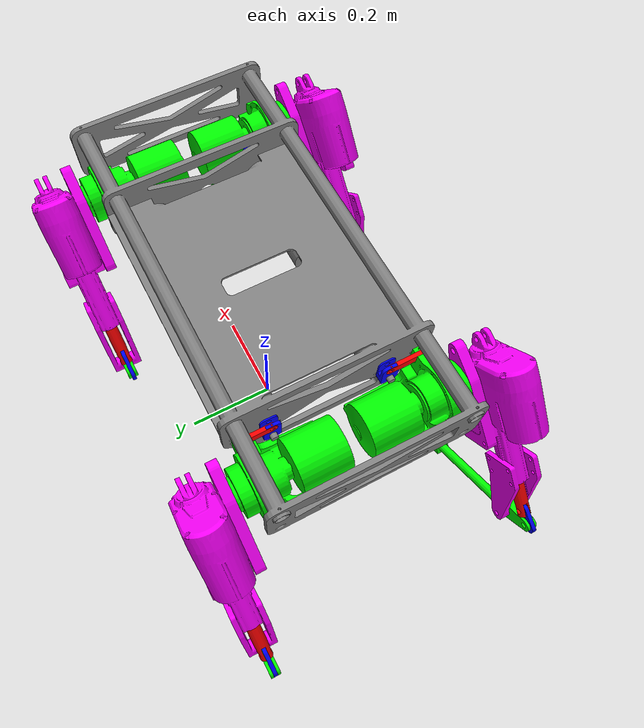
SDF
<sdf version="1.5">
 <model name="popiv10">
  <pose>0 0 0.55 0 0 0</pose>
  <plugin name="clock" filename="libgz_clock.so"><topic>/gazebo/frc/time</topic></plugin>
  <link name="Bati">
   <pose>-1.23401267283955E-16 -9.48763512283674E-17 -8.67361737988425E-19 0 0 0</pose>
   <must_be_base_link>1</must_be_base_link>
   <velocity_decay><linear>0</linear><angular>0</angular></velocity_decay>
   <inertial>
    <mass>20</mass>
    <pose>9.09532074717387E-06 -0.000497553877309163 -0.0275069463969434 0 0 0</pose>
    <inertia>
     <ixx>0.247668537907728</ixx>
     <ixy>9.52719505934244E-09</ixy>
     <ixz>9.14606177069775E-06</ixz>
     <iyy>0.721725932996695</iyy>
     <iyz>1.25675089666419E-05</iyz>
     <izz>0.909808046486756</izz>
    </inertia>
   </inertial>
   <collision name="Bati_collision">
    <geometry><mesh><scale>1 1 1</scale><uri>model://popiv10/meshes/Bati_col.STL</uri></mesh></geometry>
    <surface><friction><ode><mu>0</mu><mu2>0</mu2></ode></friction></surface>
   </collision>
   <visual name="Bati_visual">
    <material>
     <ambient>0.501960784313725 0.501960784313725 0.501960784313725 1</ambient>
     <diffuse>0.501960784313725 0.501960784313725 0.501960784313725 1</diffuse>
    </material>
    <geometry><mesh><scale>1 1 1</scale><uri>model://popiv10/meshes/Bati.STL</uri></mesh></geometry>
   </visual>
  </link>
  <link name="AileAvG">
   <pose>0.263425754201004 0.114444721397644 -0.0432315685423388 0 0 -8.0520144301051E-16</pose>
   <velocity_decay><linear>0</linear><angular>0</angular></velocity_decay>
   <inertial>
    <mass>0.0646786387611762</mass>
    <inertia>
     <ixx>2.25767017294111E-05</ixx>
     <ixy>1.29438836587314E-10</ixy>
     <ixz>1.39844874559254E-07</ixz>
     <iyy>1.8492229405514E-05</iyy>
     <iyz>8.35522267007479E-09</iyz>
     <izz>9.46527628055262E-06</izz>
    </inertia>
   </inertial>
   <collision name="AileAvG_collision">
    <pose>-0.263425754201004 -0.114444721397644 0.0432315685423388 0 0 0</pose>
    <geometry><mesh><scale>1 1 1</scale><uri>model://popiv10/meshes/AileAvG_col.STL</uri></mesh></geometry>
    <surface><friction><ode><mu>0</mu><mu2>0</mu2></ode></friction></surface>
   </collision>
   <visual name="AileAvG_visual">
    <pose>-0.263425754201004 -0.114444721397644 0.0432315685423388 0 0 0</pose>
    <material><ambient>0 0 1 1</ambient><diffuse>0 0 1 1</diffuse></material>
    <geometry><mesh><scale>1 1 1</scale><uri>model://popiv10/meshes/AileAvG.STL</uri></mesh></geometry>
   </visual>
  </link>
  <joint name="Bati-AileAvG" type="revolute">
   <parent>Bati</parent>
   <child>AileAvG</child>
   <pose>7.42457990038914E-05 -6.26432165022617E-06 -0.00676795740041729 0 6.28318530717959 4.72089941321358</pose>
   <axis>
    <xyz>0.00851033009774649 0.999963786485104 2.17326029417106E-17</xyz>
    <dynamics><damping>0</damping><friction>0</friction></dynamics>
    <limit><upper>0.383523383846024</upper><lower>-0.383523383846026</lower><effort>-1</effort></limit>
   </axis>
  </joint>
  <link name="EpauleAvG">
   <pose>-1.23401267283955E-16 -9.48763512283674E-17 -8.67361737988425E-19 0 0 0</pose>
   <velocity_decay><linear>0</linear><angular>0</angular></velocity_decay>
   <inertial>
    <mass>6.5</mass>
    <pose>0.330160459717672 0.113505740104002 -0.0631160868327549 0 0 0</pose>
    <inertia>
     <ixx>0.00781693</ixx>
     <ixy>3.684E-05</ixy>
     <ixz>1.995E-05</ixz>
     <iyy>0.00375687</iyy>
     <iyz>0.00015667</iyz>
     <izz>0.00774045</izz>
    </inertia>
   </inertial>
   <collision name="EpauleAvG_collision">
    <geometry><mesh><scale>1 1 1</scale><uri>model://popiv10/meshes/EpauleAvG_col.STL</uri></mesh></geometry>
    <surface><friction><ode><mu>0</mu><mu2>0</mu2></ode></friction></surface>
   </collision>
   <visual name="EpauleAvG_visual">
    <material><ambient>0 1 0 1</ambient><diffuse>0 1 0 1</diffuse></material>
    <geometry><mesh><scale>1 1 1</scale><uri>model://popiv10/meshes/EpauleAvG.STL</uri></mesh></geometry>
   </visual>
  </link>
  <joint name="Bati-EpauleAvG" type="revolute">
   <parent>Bati</parent>
   <child>EpauleAvG</child>
   <pose>0.330499999999994 0.174462531062964 -0.050999999880791 0 0 3.14159265358979</pose>
   <axis>
    <xyz>-1 -1.22460635382238E-16 0</xyz>
    <dynamics><damping>0</damping><friction>0</friction></dynamics>
    <limit><effort>-1</effort></limit>
   </axis>
  </joint>
  <joint name="BieletteAileAvG-EpauleAvG" type="revolute">
   <parent>BieletteAileAvG</parent>
   <child>EpauleAvG</child>
   <pose>0.263499999999995 0.174462531062966 -0.0239999998807918 0 2.16840434497101E-15 3.14159265358979</pose>
   <axis>
    <xyz>-1 -1.22460635382238E-16 -4.33680868994201E-15</xyz>
    <dynamics><damping>0</damping><friction>0</friction></dynamics>
    <limit><effort>-1</effort></limit>
   </axis>
  </joint>
  <link name="HJambeAvG">
   <pose>-1.23401267283955E-16 -9.48763512283674E-17 -8.67361737988425E-19 0 0 0</pose>
   <velocity_decay><linear>0</linear><angular>0</angular></velocity_decay>
   <inertial>
    <mass>4.1</mass>
    <pose>0.245410748798941 0.277164493537131 -0.115188374157169 0 0 0</pose>
    <inertia>
     <ixx>0.0220357818968176</ixx>
     <ixy>0.000712337452440022</ixy>
     <ixz>0.0111390372482744</ixz>
     <iyy>0.0302085713461647</iyy>
     <iyz>0.000476765402940527</iyz>
     <izz>0.0113202097886378</izz>
    </inertia>
   </inertial>
   <collision name="HJambeAvG_collision">
    <geometry><mesh><scale>1 1 1</scale><uri>model://popiv10/meshes/HJambeAvG_col.STL</uri></mesh></geometry>
    <surface><friction><ode><mu>0</mu><mu2>0</mu2></ode></friction></surface>
   </collision>
   <visual name="HJambeAvG_visual">
    <material><ambient>1 0 1 1</ambient><diffuse>1 0 1 1</diffuse></material>
    <geometry><mesh><scale>1 1 1</scale><uri>model://popiv10/meshes/HJambeAvG.STL</uri></mesh></geometry>
   </visual>
  </link>
  <joint name="EpauleAvG-HJambeAvG" type="revolute">
   <parent>EpauleAvG</parent>
   <child>HJambeAvG</child>
   <pose>0.330500000002319 0.282244545292279 -0.0509999998820486 0 6.28318530717959 4.71238898038469</pose>
   <axis>
    <xyz>1 -1.87014163338584E-16 -3.95422248090819E-16</xyz>
    <dynamics><damping>0</damping><friction>0</friction></dynamics>
    <limit><upper>1</upper><lower>-1.5</lower><effort>-1</effort></limit>
   </axis>
  </joint>
  <link name="BJambeAvG">
   <pose>0.216447376348876 0.281994545292388 -0.417386841132585 0 0 -8.0520144301051E-16</pose>
   <velocity_decay><linear>0</linear><angular>0</angular></velocity_decay>
   <inertial>
    <mass>0.469736249389513</mass>
    <inertia>
     <ixx>0.00253610875647126</ixx>
     <ixy>7.37151137908166E-12</ixy>
     <ixz>0.00337121059012424</ixz>
     <iyy>0.00714961627655026</iyy>
     <iyz>7.23513978500038E-13</iyz>
     <izz>0.0046504334596967</izz>
    </inertia>
   </inertial>
   <collision name="BJambeAvG_collision">
    <pose>-0.216447376348876 -0.281994545292389 0.417386841132585 0 0 0</pose>
    <geometry><mesh><scale>1 1 1</scale><uri>model://popiv10/meshes/BJambeAvG_col.STL</uri></mesh></geometry>
    <surface><friction><ode><mu>0</mu><mu2>0</mu2></ode></friction></surface>
   </collision>
   <visual name="BJambeAvG_visual">
    <pose>-0.216447376348876 -0.281994545292389 0.417386841132585 0 0 0</pose>
    <material><ambient>0 1 0 1</ambient><diffuse>0 1 0 1</diffuse></material>
    <geometry><mesh><scale>1 1 1</scale><uri>model://popiv10/meshes/BJambeAvG.STL</uri></mesh></geometry>
   </visual>
  </link>
  <joint name="HJambeAvG-BJambeAvG" type="revolute">
   <parent>HJambeAvG</parent>
   <child>BJambeAvG</child>
   <pose>-0.0896042233885925 -1.09634523681734E-13 0.0763905558995271 0 0 4.71238898038469</pose>
   <axis>
    <xyz>1 2.22044604925031E-16 0</xyz>
    <dynamics><damping>0</damping><friction>0</friction></dynamics>
    <limit><effort>-1</effort></limit>
   </axis>
  </joint>
  <joint name="BieletteAvG-BJambeAvG" type="revolute">
   <parent>BieletteAvG</parent>
   <child>BJambeAvG</child>
   <pose>-0.143543143871407 -1.09745545984197E-13 0.112661658131862 0 0 4.71238898038469</pose>
   <axis>
    <xyz>1 2.22044604925031E-16 0</xyz>
    <dynamics><damping>0</damping><friction>0</friction></dynamics>
    <limit><effort>-1</effort></limit>
   </axis>
  </joint>
  <link name="TigeVerinAvG">
   <pose>0.176757322686291 0.282244545212022 -0.210137911755464 0 0 -8.0520144301051E-16</pose>
   <velocity_decay><linear>0</linear><angular>0</angular></velocity_decay>
   <inertial>
    <mass>0.819350645424425</mass>
    <inertia>
     <ixx>0.00140421484692396</ixx>
     <ixy>6.99481704008864E-12</ixy>
     <ixz>0.00128823449592725</ixz>
     <iyy>0.00264825158697256</iyy>
     <iyz>6.65368592118286E-12</iyz>
     <izz>0.00131684880190005</izz>
    </inertia>
   </inertial>
   <collision name="TigeVerinAvG_collision">
    <pose>-0.176757322686291 -0.282244545212022 0.210137911755464 0 0 0</pose>
    <geometry><mesh><scale>1 1 1</scale><uri>model://popiv10/meshes/TigeVerinAvG_col.STL</uri></mesh></geometry>
    <surface><friction><ode><mu>0</mu><mu2>0</mu2></ode></friction></surface>
   </collision>
   <visual name="TigeVerinAvG_visual">
    <pose>-0.176757322686291 -0.282244545212022 0.210137911755464 0 0 0</pose>
    <material><ambient>1 0 0 1</ambient><diffuse>1 0 0 1</diffuse></material>
    <geometry><mesh><scale>1 1 1</scale><uri>model://popiv10/meshes/TigeVerinAvG.STL</uri></mesh></geometry>
   </visual>
  </link>
  <joint name="HJambeAvG-TigeVerinAvG" type="prismatic">
   <parent>HJambeAvG</parent>
   <child>TigeVerinAvG</child>
   <pose>3.21900006650111E-10 8.02571342717329E-11 -3.11169645605958E-10 0 5.48083901776243 1.20020565550599E-15</pose>
   <axis>
    <xyz>1 2.8765475674835E-17 3.33066907387547E-16</xyz>
    <dynamics><damping>0</damping><friction>0</friction></dynamics>
    <limit><upper>0.0477695258948646</upper><lower>-0.104230474105135</lower><effort>-1</effort></limit>
   </axis>
  </joint>
  <link name="BieletteAvG">
   <pose>0.0896638423431795 0.281994545292381 -0.293811179283136 0 0 -8.0520144301051E-16</pose>
   <velocity_decay><linear>0</linear><angular>0</angular></velocity_decay>
   <inertial>
    <mass>0.0323957439627731</mass>
    <inertia>
     <ixx>4.72536618155967E-06</ixx>
     <ixy>1.41108078436688E-20</ixy>
     <ixz>3.66200752356185E-06</ixz>
     <iyy>1.23438596351373E-05</iyy>
     <iyz>6.75738668758352E-21</iyz>
     <izz>7.96404790009363E-06</izz>
    </inertia>
   </inertial>
   <collision name="BieletteAvG_collision">
    <pose>-0.0896638423431794 -0.281994545292381 0.293811179283136 0 0 0</pose>
    <geometry><mesh><scale>1 1 1</scale><uri>model://popiv10/meshes/BieletteAvG_col.STL</uri></mesh></geometry>
    <surface><friction><ode><mu>0</mu><mu2>0</mu2></ode></friction></surface>
   </collision>
   <visual name="BieletteAvG_visual">
    <pose>-0.0896638423431794 -0.281994545292381 0.293811179283136 0 0 0</pose>
    <material><ambient>0 0 1 1</ambient><diffuse>0 0 1 1</diffuse></material>
    <geometry><mesh><scale>1 1 1</scale><uri>model://popiv10/meshes/BieletteAvG.STL</uri></mesh></geometry>
   </visual>
  </link>
  <joint name="TigeVerinAvG-BieletteAvG" type="revolute">
   <parent>TigeVerinAvG</parent>
   <child>BieletteAvG</child>
   <pose>0.0167596098657077 -1.02362562870439E-13 0.0109140037177449 0 6.28318530717959 4.71238898038469</pose>
   <axis>
    <xyz>1 1.15388342592191E-15 -2.96485229448768E-17</xyz>
    <dynamics><damping>0</damping><friction>0</friction></dynamics>
    <limit><effort>-1</effort></limit>
   </axis>
  </joint>
  <link name="AileAvD">
   <pose>0.263425754201022 -0.115519659271709 -0.0432315685423388 0 0 -8.0520144301051E-16</pose>
   <velocity_decay><linear>0</linear><angular>0</angular></velocity_decay>
   <inertial>
    <mass>0.0646786387611766</mass>
    <inertia>
     <ixx>2.25767017294112E-05</ixx>
     <ixy>1.29438836609017E-10</ixy>
     <ixz>1.39844874559271E-07</ixz>
     <iyy>1.84922294055141E-05</iyy>
     <iyz>8.35522266994819E-09</iyz>
     <izz>9.4652762805527E-06</izz>
    </inertia>
   </inertial>
   <collision name="AileAvD_collision">
    <pose>-0.263425754201022 0.115519659271709 0.0432315685423388 0 0 0</pose>
    <geometry><mesh><scale>1 1 1</scale><uri>model://popiv10/meshes/AileAvD_col.STL</uri></mesh></geometry>
    <surface><friction><ode><mu>0</mu><mu2>0</mu2></ode></friction></surface>
   </collision>
   <visual name="AileAvD_visual">
    <pose>-0.263425754201022 0.115519659271709 0.0432315685423388 0 0 0</pose>
    <material><ambient>0 0 1 1</ambient><diffuse>0 0 1 1</diffuse></material>
    <geometry><mesh><scale>1 1 1</scale><uri>model://popiv10/meshes/AileAvD.STL</uri></mesh></geometry>
   </visual>
  </link>
  <joint name="Bati-AileAvD" type="revolute">
   <parent>Bati</parent>
   <child>AileAvD</child>
   <pose>7.4246443611814E-05 6.26437808091962E-06 -0.00676795668422939 0 6.28318530717958 3.14159265358979</pose>
   <axis>
    <xyz>1 2.15451954526929E-16 -4.00572262214392E-16</xyz>
    <dynamics><damping>0</damping><friction>0</friction></dynamics>
    <limit><upper>0.383523383846024</upper><lower>-0.383523383846025</lower><effort>-1</effort></limit>
   </axis>
  </joint>
  <link name="EpauleAvD">
   <pose>-1.23401267283955E-16 -9.48763512283674E-17 -8.67361737988425E-19 0 0 0</pose>
   <velocity_decay><linear>0</linear><angular>0</angular></velocity_decay>
   <inertial>
    <mass>6.5</mass>
    <pose>0.329651979210791 -0.119157625267659 -0.0620302195490913 0 0 0</pose>
    <inertia>
     <ixx>0.00851805</ixx>
     <ixy>9.2E-05</ixy>
     <ixz>5.21E-05</ixz>
     <iyy>0.0042674</iyy>
     <iyz>0.00027441</iyz>
     <izz>0.00855281</izz>
    </inertia>
   </inertial>
   <collision name="EpauleAvD_collision">
    <geometry><mesh><scale>1 1 1</scale><uri>model://popiv10/meshes/EpauleAvD_col.STL</uri></mesh></geometry>
    <surface><friction><ode><mu>0</mu><mu2>0</mu2></ode></friction></surface>
   </collision>
   <visual name="EpauleAvD_visual">
    <material><ambient>0 1 0 1</ambient><diffuse>0 1 0 1</diffuse></material>
    <geometry><mesh><scale>1 1 1</scale><uri>model://popiv10/meshes/EpauleAvD.STL</uri></mesh></geometry>
   </visual>
  </link>
  <joint name="Bati-EpauleAvD" type="revolute">
   <parent>Bati</parent>
   <child>EpauleAvD</child>
   <pose>0.330500000000001 -0.175537468937039 -0.050999999880792 0 0 3.14159265358979</pose>
   <axis>
    <xyz>1 1.22460635382238E-16 0</xyz>
    <dynamics><damping>0</damping><friction>0</friction></dynamics>
    <limit><effort>-1</effort></limit>
   </axis>
  </joint>
  <joint name="BieletteAileAvD-EpauleAvD" type="revolute">
   <parent>BieletteAileAvD</parent>
   <child>EpauleAvD</child>
   <pose>0.263499999984395 -0.17553746869356 -0.0240000001962606 0 6.28318530717959 3.14159265358979</pose>
   <axis>
    <xyz>1 1.22460635382238E-16 7.05008781044128E-17</xyz>
    <dynamics><damping>0</damping><friction>0</friction></dynamics>
    <limit><effort>-1</effort></limit>
   </axis>
  </joint>
  <link name="HJambeAvD">
   <pose>-1.23401267283955E-16 -9.48763512283674E-17 -8.67361737988425E-19 0 0 0</pose>
   <velocity_decay><linear>0</linear><angular>0</angular></velocity_decay>
   <inertial>
    <mass>4.1</mass>
    <pose>0.253396068518462 -0.272602217530575 -0.110970658809525 0 0 0</pose>
    <inertia>
     <ixx>0.02370185</ixx>
     <ixy>0.00150343</ixy>
     <ixz>0.01224045</ixz>
     <iyy>0.032955085283372</iyy>
     <iyz>0.00097724</iyz>
     <izz>0.01358912</izz>
    </inertia>
   </inertial>
   <collision name="HJambeAvD_collision">
    <geometry><mesh><scale>1 1 1</scale><uri>model://popiv10/meshes/HJambeAvD_col.STL</uri></mesh></geometry>
    <surface><friction><ode><mu>0</mu><mu2>0</mu2></ode></friction></surface>
   </collision>
   <visual name="HJambeAvD_visual">
    <material><ambient>1 0 1 1</ambient><diffuse>1 0 1 1</diffuse></material>
    <geometry><mesh><scale>1 1 1</scale><uri>model://popiv10/meshes/HJambeAvD.STL</uri></mesh></geometry>
   </visual>
  </link>
  <joint name="EpauleAvD-HJambeAvD" type="revolute">
   <parent>EpauleAvD</parent>
   <child>HJambeAvD</child>
   <pose>0.330500000000002 -0.28315545470771 -0.0509999998807942 0 1.197854970235E-16 4.71238898038469</pose>
   <axis>
    <xyz>1 2.22044604925031E-16 -2.46519032881566E-32</xyz>
    <dynamics><damping>0</damping><friction>0</friction></dynamics>
    <limit><upper>1</upper><lower>-1.5</lower><effort>-1</effort></limit>
   </axis>
  </joint>
  <link name="TigeVerinAvD">
   <pose>0.17649914990041 -0.283155454788444 -0.209911199630747 0 0 -8.0520144301051E-16</pose>
   <velocity_decay><linear>0</linear><angular>0</angular></velocity_decay>
   <inertial>
    <mass>0.819350645411138</mass>
    <inertia>
     <ixx>0.00140021885085488</ixx>
     <ixy>7.02243398024131E-12</ixy>
     <ixz>0.00128836379286627</ixz>
     <iyy>0.00264825158688577</iyy>
     <iyz>6.66056283179175E-12</iyz>
     <izz>0.00132084479788077</izz>
    </inertia>
   </inertial>
   <collision name="TigeVerinAvD_collision">
    <pose>-0.17649914990041 0.283155454788444 0.209911199630747 0 0 0</pose>
    <geometry><mesh><scale>1 1 1</scale><uri>model://popiv10/meshes/TigeVerinAvD_col.STL</uri></mesh></geometry>
    <surface><friction><ode><mu>0</mu><mu2>0</mu2></ode></friction></surface>
   </collision>
   <visual name="TigeVerinAvD_visual">
    <pose>-0.17649914990041 0.283155454788444 0.209911199630747 0 0 0</pose>
    <material><ambient>1 0 0 1</ambient><diffuse>1 0 0 1</diffuse></material>
    <geometry><mesh><scale>1 1 1</scale><uri>model://popiv10/meshes/TigeVerinAvD.STL</uri></mesh></geometry>
   </visual>
  </link>
  <joint name="HJambeAvD-TigeVerinAvD" type="prismatic">
   <parent>HJambeAvD</parent>
   <child>TigeVerinAvD</child>
   <pose>3.21619564314091E-10 8.07224287413533E-11 -3.11864811752827E-10 0 5.48238989700715 6.28318530717958</pose>
   <axis>
    <xyz>1 1.07364054814694E-16 -1.66533453693773E-16</xyz>
    <dynamics><damping>0</damping><friction>0</friction></dynamics>
    <limit><upper>0.0477861233637279</upper><lower>-0.104213876636272</lower><effort>-1</effort></limit>
   </axis>
  </joint>
  <link name="BieletteAvD">
   <pose>0.0892768695676518 -0.283405454707717 -0.29345062373754 0 0 -8.0520144301051E-16</pose>
   <velocity_decay><linear>0</linear><angular>0</angular></velocity_decay>
   <inertial>
    <mass>0.0323957439627731</mass>
    <inertia>
     <ixx>4.71459459126065E-06</ixx>
     <ixy>7.24180321541611E-21</ixy>
     <ixz>3.65722535850406E-06</ixz>
     <iyy>1.23438596351374E-05</iyy>
     <iyz>3.09638023000429E-21</iyz>
     <izz>7.9748194903927E-06</izz>
    </inertia>
   </inertial>
   <collision name="BieletteAvD_collision">
    <pose>-0.0892768695676521 0.283405454707717 0.29345062373754 0 0 0</pose>
    <geometry><mesh><scale>1 1 1</scale><uri>model://popiv10/meshes/BieletteAvD_col.STL</uri></mesh></geometry>
    <surface><friction><ode><mu>0</mu><mu2>0</mu2></ode></friction></surface>
   </collision>
   <visual name="BieletteAvD_visual">
    <pose>-0.0892768695676521 0.283405454707717 0.29345062373754 0 0 0</pose>
    <material><ambient>0 0 1 1</ambient><diffuse>0 0 1 1</diffuse></material>
    <geometry><mesh><scale>1 1 1</scale><uri>model://popiv10/meshes/BieletteAvD.STL</uri></mesh></geometry>
   </visual>
  </link>
  <joint name="TigeVerinAvD-BieletteAvD" type="revolute">
   <parent>TigeVerinAvD</parent>
   <child>BieletteAvD</child>
   <pose>0.0167756536522129 1.60982338570648E-14 0.0108893270931236 0 6.28318530717959 4.71238898038469</pose>
   <axis>
    <xyz>1 1.10410726205712E-15 -4.88095103277837E-16</xyz>
    <dynamics><damping>0</damping><friction>0</friction></dynamics>
    <limit><effort>-1</effort></limit>
   </axis>
  </joint>
  <link name="BJambeAvD">
   <pose>0.215899984472949 -0.283405454707723 -0.417185316449007 0 0 -8.0520144301051E-16</pose>
   <velocity_decay><linear>0</linear><angular>0</angular></velocity_decay>
   <inertial>
    <mass>0.469736249392124</mass>
    <inertia>
     <ixx>0.00254474555040036</ixx>
     <ixy>7.37239303461882E-12</ixy>
     <ixz>0.00337390682087246</ixz>
     <iyy>0.00714961627663037</iyy>
     <iyz>7.14103447451869E-13</iyz>
     <izz>0.00464179666584774</izz>
    </inertia>
   </inertial>
   <collision name="BJambeAvD_collision">
    <pose>-0.21589998447295 0.283405454707723 0.417185316449007 0 0 0</pose>
    <geometry><mesh><scale>1 1 1</scale><uri>model://popiv10/meshes/BJambeAvD_col.STL</uri></mesh></geometry>
    <surface><friction><ode><mu>0</mu><mu2>0</mu2></ode></friction></surface>
   </collision>
   <visual name="BJambeAvD_visual">
    <pose>-0.21589998447295 0.283405454707723 0.417185316449007 0 0 0</pose>
    <material><ambient>0 1 0 1</ambient><diffuse>0 1 0 1</diffuse></material>
    <geometry><mesh><scale>1 1 1</scale><uri>model://popiv10/meshes/BJambeAvD.STL</uri></mesh></geometry>
   </visual>
  </link>
  <joint name="BieletteAvD-BJambeAvD" type="revolute">
   <parent>BieletteAvD</parent>
   <child>BJambeAvD</child>
   <pose>-0.143398768557513 2.19269047363468E-14 0.112845365618351 0 6.28318530717958 4.71238898038469</pose>
   <axis>
    <xyz>1 -2.36657397882327E-15 -6.04756975549474E-16</xyz>
    <dynamics><damping>0</damping><friction>0</friction></dynamics>
    <limit><effort>-1</effort></limit>
   </axis>
  </joint>
  <joint name="HJambeAvD-BJambeAvD" type="revolute">
   <parent>HJambeAvD</parent>
   <child>BJambeAvD</child>
   <pose>-0.0895063356320149 2.27595720048157E-15 0.0765052270196603 0 0 4.71238898038469</pose>
   <axis>
    <xyz>1 -1.2264489552059E-15 0</xyz>
    <dynamics><damping>0</damping><friction>0</friction></dynamics>
    <limit><effort>-1</effort></limit>
   </axis>
  </joint>
  <link name="AileArG">
   <pose>-0.263425754200995 0.114444721397642 -0.0432315685423508 0 0 -8.0520144301051E-16</pose>
   <velocity_decay><linear>0</linear><angular>0</angular></velocity_decay>
   <inertial>
    <mass>0.0646786387611763</mass>
    <inertia>
     <ixx>2.25767017294111E-05</ixx>
     <ixy>1.29438836601784E-10</ixy>
     <ixz>1.39844874559266E-07</ixz>
     <iyy>1.8492229405514E-05</iyy>
     <iyz>8.35522267005522E-09</iyz>
     <izz>9.46527628055264E-06</izz>
    </inertia>
   </inertial>
   <collision name="AileArG_collision">
    <pose>0.263425754200995 -0.114444721397642 0.0432315685423508 0 0 0</pose>
    <geometry><mesh><scale>1 1 1</scale><uri>model://popiv10/meshes/AileArG_col.STL</uri></mesh></geometry>
    <surface><friction><ode><mu>0</mu><mu2>0</mu2></ode></friction></surface>
   </collision>
   <visual name="AileArG_visual">
    <pose>0.263425754200995 -0.114444721397642 0.0432315685423508 0 0 0</pose>
    <material><ambient>0 0 1 1</ambient><diffuse>0 0 1 1</diffuse></material>
    <geometry><mesh><scale>1 1 1</scale><uri>model://popiv10/meshes/AileArG.STL</uri></mesh></geometry>
   </visual>
  </link>
  <joint name="Bati-AileArG" type="revolute">
   <parent>Bati</parent>
   <child>AileArG</child>
   <pose>-7.42457990055567E-05 -6.26432164808899E-06 -0.00676795740041408 0 6.28318530717959 4.72089941321358</pose>
   <axis>
    <xyz>0.00851033009774649 0.999963786485104 2.17326029417106E-17</xyz>
    <dynamics><damping>0</damping><friction>0</friction></dynamics>
    <limit><upper>0.383523383846024</upper><lower>-0.383523383846026</lower><effort>-1</effort></limit>
   </axis>
  </joint>
  <link name="EpauleArG">
   <pose>-1.23401267283955E-16 -9.48763512283674E-17 -8.67361737988425E-19 0 0 0</pose>
   <velocity_decay><linear>0</linear><angular>0</angular></velocity_decay>
   <inertial>
    <mass>6.5</mass>
    <pose>-0.330160488561749 0.113505740028266 -0.0631160783512883 0 0 0</pose>
    <inertia>
     <ixx>0.00781693</ixx>
     <ixy>3.684E-05</ixy>
     <ixz>1.995E-05</ixz>
     <iyy>0.00375687</iyy>
     <iyz>0.00015667</iyz>
     <izz>0.00774044970464082</izz>
    </inertia>
   </inertial>
   <collision name="EpauleArG_collision">
    <geometry><mesh><scale>1 1 1</scale><uri>model://popiv10/meshes/EpauleArG_col.STL</uri></mesh></geometry>
    <surface><friction><ode><mu>0</mu><mu2>0</mu2></ode></friction></surface>
   </collision>
   <visual name="EpauleArG_visual">
    <material><ambient>0 1 0 1</ambient><diffuse>0 1 0 1</diffuse></material>
    <geometry><mesh><scale>1 1 1</scale><uri>model://popiv10/meshes/EpauleArG.STL</uri></mesh></geometry>
   </visual>
  </link>
  <joint name="Bati-EpauleArG" type="revolute">
   <parent>Bati</parent>
   <child>EpauleArG</child>
   <pose>-0.330500000000007 0.174462531062964 -0.0509999998807889 0 0 3.14159265358979</pose>
   <axis>
    <xyz>-1 -1.22460635382238E-16 0</xyz>
    <dynamics><damping>0</damping><friction>0</friction></dynamics>
    <limit><effort>-1</effort></limit>
   </axis>
  </joint>
  <joint name="BieletteAileArG-EpauleArG" type="revolute">
   <parent>BieletteAileArG</parent>
   <child>EpauleArG</child>
   <pose>-0.263500003637691 0.174462534898399 -0.0240000001215705 0 0 0</pose>
   <axis>
    <xyz>1 0 0</xyz>
    <dynamics><damping>0</damping><friction>0</friction></dynamics>
    <limit><effort>-1</effort></limit>
   </axis>
  </joint>
  <link name="HJambeArG">
   <pose>-1.23401267283955E-16 -9.48763512283674E-17 -8.67361737988425E-19 0 0 0</pose>
   <velocity_decay><linear>0</linear><angular>0</angular></velocity_decay>
   <inertial>
    <mass>4.1</mass>
    <pose>-0.41558925113957 0.277164493513262 -0.11518837417974 0 0 0</pose>
    <inertia>
     <ixx>0.0220357818731865</ixx>
     <ixy>0.000712337452382621</ixy>
     <ixz>0.0111390372464694</ixz>
     <iyy>0.0302085713135378</iyy>
     <iyz>0.00047676540853857</iyz>
     <izz>0.0113202097802231</izz>
    </inertia>
   </inertial>
   <collision name="HJambeArG_collision">
    <geometry><mesh><scale>1 1 1</scale><uri>model://popiv10/meshes/HJambeArG_col.STL</uri></mesh></geometry>
    <surface><friction><ode><mu>0</mu><mu2>0</mu2></ode></friction></surface>
   </collision>
   <visual name="HJambeArG_visual">
    <material><ambient>1 0 1 1</ambient><diffuse>1 0 1 1</diffuse></material>
    <geometry><mesh><scale>1 1 1</scale><uri>model://popiv10/meshes/HJambeArG.STL</uri></mesh></geometry>
   </visual>
  </link>
  <joint name="EpauleArG-HJambeArG" type="revolute">
   <parent>EpauleArG</parent>
   <child>HJambeArG</child>
   <pose>-0.330500000049006 0.282244545292279 -0.050999999912882 0 5.16374209661646E-16 4.71238898038469</pose>
   <axis>
    <xyz>1 2.88064888632223E-15 -9.86076131526265E-32</xyz>
    <dynamics><damping>0</damping><friction>0</friction></dynamics>
    <limit><upper>1</upper><lower>-1.5</lower><effort>-1</effort></limit>
   </axis>
  </joint>
  <link name="TigeVerinArG">
   <pose>-0.484242677313733 0.282244545211858 -0.210137911755469 0 0 -8.0520144301051E-16</pose>
   <velocity_decay><linear>0</linear><angular>0</angular></velocity_decay>
   <inertial>
    <mass>0.819350645424423</mass>
    <inertia>
     <ixx>0.00140421484692373</ixx>
     <ixy>6.99481620954319E-12</ixy>
     <ixz>0.00128823449592725</ixz>
     <iyy>0.00264825158697254</iyy>
     <iyz>6.65368506438056E-12</iyz>
     <izz>0.00131684880190026</izz>
    </inertia>
   </inertial>
   <collision name="TigeVerinArG_collision">
    <pose>0.484242677313733 -0.282244545211857 0.210137911755469 0 0 0</pose>
    <geometry><mesh><scale>1 1 1</scale><uri>model://popiv10/meshes/TigeVerinArG_col.STL</uri></mesh></geometry>
    <surface><friction><ode><mu>0</mu><mu2>0</mu2></ode></friction></surface>
   </collision>
   <visual name="TigeVerinArG_visual">
    <pose>0.484242677313733 -0.282244545211857 0.210137911755469 0 0 0</pose>
    <material><ambient>1 0 0 1</ambient><diffuse>1 0 0 1</diffuse></material>
    <geometry><mesh><scale>1 1 1</scale><uri>model://popiv10/meshes/TigeVerinArG.STL</uri></mesh></geometry>
   </visual>
  </link>
  <joint name="HJambeArG-TigeVerinArG" type="prismatic">
   <parent>HJambeArG</parent>
   <child>TigeVerinArG</child>
   <pose>3.21896564958735E-10 8.04164512757666E-11 -3.11166259425733E-10 0 5.48083901776252 1.60027420734146E-15</pose>
   <axis>
    <xyz>1 3.83539675662543E-17 0</xyz>
    <dynamics><damping>0</damping><friction>0</friction></dynamics>
    <limit><upper>0.0477695258948678</upper><lower>-0.104230474105132</lower><effort>-1</effort></limit>
   </axis>
  </joint>
  <link name="BieletteArG">
   <pose>-0.571336157656853 0.281994545292214 -0.293811179283134 0 0 -8.0520144301051E-16</pose>
   <velocity_decay><linear>0</linear><angular>0</angular></velocity_decay>
   <inertial>
    <mass>0.0323957439627735</mass>
    <inertia>
     <ixx>4.72536618155908E-06</ixx>
     <ixy>9.38296758738578E-21</ixy>
     <ixz>3.6620075235616E-06</ixz>
     <iyy>1.23438596351375E-05</iyy>
     <iyz>1.19128295963892E-20</iyz>
     <izz>7.96404790009437E-06</izz>
    </inertia>
   </inertial>
   <collision name="BieletteArG_collision">
    <pose>0.571336157656854 -0.281994545292213 0.293811179283134 0 0 0</pose>
    <geometry><mesh><scale>1 1 1</scale><uri>model://popiv10/meshes/BieletteArG_col.STL</uri></mesh></geometry>
    <surface><friction><ode><mu>0</mu><mu2>0</mu2></ode></friction></surface>
   </collision>
   <visual name="BieletteArG_visual">
    <pose>0.571336157656854 -0.281994545292213 0.293811179283134 0 0 0</pose>
    <material><ambient>0 0 1 1</ambient><diffuse>0 0 1 1</diffuse></material>
    <geometry><mesh><scale>1 1 1</scale><uri>model://popiv10/meshes/BieletteArG.STL</uri></mesh></geometry>
   </visual>
  </link>
  <joint name="TigeVerinArG-BieletteArG" type="revolute">
   <parent>TigeVerinArG</parent>
   <child>BieletteArG</child>
   <pose>0.0167596098657244 6.51145803942654E-14 0.0109140037176295 0 0 4.71238898038469</pose>
   <axis>
    <xyz>1 1.48016096849335E-15 0</xyz>
    <dynamics><damping>0</damping><friction>0</friction></dynamics>
    <limit><effort>-1</effort></limit>
   </axis>
  </joint>
  <link name="BJambeArG">
   <pose>-0.444552623651175 0.281994545292203 -0.417386841132587 0 0 -8.0520144301051E-16</pose>
   <velocity_decay><linear>0</linear><angular>0</angular></velocity_decay>
   <inertial>
    <mass>0.469736249389513</mass>
    <inertia>
     <ixx>0.00253610875647184</ixx>
     <ixy>7.37152976745088E-12</ixy>
     <ixz>0.00337121059012442</ixz>
     <iyy>0.00714961627655026</iyy>
     <iyz>7.23500662394798E-13</iyz>
     <izz>0.00465043345969612</izz>
    </inertia>
   </inertial>
   <collision name="BJambeArG_collision">
    <pose>0.444552623651175 -0.281994545292203 0.417386841132587 0 0 0</pose>
    <geometry><mesh><scale>1 1 1</scale><uri>model://popiv10/meshes/BJambeArG_col.STL</uri></mesh></geometry>
    <surface><friction><ode><mu>0</mu><mu2>0</mu2></ode></friction></surface>
   </collision>
   <visual name="BJambeArG_visual">
    <pose>0.444552623651175 -0.281994545292203 0.417386841132587 0 0 0</pose>
    <material><ambient>0 1 0 1</ambient><diffuse>0 1 0 1</diffuse></material>
    <geometry><mesh><scale>1 1 1</scale><uri>model://popiv10/meshes/BJambeArG.STL</uri></mesh></geometry>
   </visual>
  </link>
  <joint name="BieletteArG-BJambeArG" type="revolute">
   <parent>BieletteArG</parent>
   <child>BJambeArG</child>
   <pose>-0.143543143871374 7.54951656745106E-14 0.112661658131754 0 0 4.71238898038469</pose>
   <axis>
    <xyz>1 2.22044604925031E-16 0</xyz>
    <dynamics><damping>0</damping><friction>0</friction></dynamics>
    <limit><effort>-1</effort></limit>
   </axis>
  </joint>
  <joint name="HJambeArG-BJambeArG" type="revolute">
   <parent>HJambeArG</parent>
   <child>BJambeArG</child>
   <pose>-0.0896042233885624 7.55506768257419E-14 0.0763905558994144 0 0 4.71238898038469</pose>
   <axis>
    <xyz>1 1.21837218857817E-15 0</xyz>
    <dynamics><damping>0</damping><friction>0</friction></dynamics>
    <limit><effort>-1</effort></limit>
   </axis>
  </joint>
  <link name="BieletteAileArG">
   <pose>-0.263500004147109 0.144462580212292 -0.023949998224632 0 0 -8.0520144301051E-16</pose>
   <velocity_decay><linear>0</linear><angular>0</angular></velocity_decay>
   <inertial>
    <mass>0.0292053931664001</mass>
    <inertia>
     <ixx>1.35676527357592E-05</ixx>
     <ixy>2.02077411649163E-20</ixy>
     <ixz>7.59456158233352E-23</ixz>
     <iyy>1.16291526214607E-06</iyy>
     <iyz>1.92536666637304E-08</iyz>
     <izz>1.27162617074808E-05</izz>
    </inertia>
   </inertial>
   <collision name="BieletteAileArG_collision">
    <pose>0.263500004147109 -0.144462580212292 0.023949998224632 0 0 0</pose>
    <geometry>
     <mesh><scale>1 1 1</scale><uri>model://popiv10/meshes/BieletteAileArG_col.STL</uri></mesh>
    </geometry>
    <surface><friction><ode><mu>0</mu><mu2>0</mu2></ode></friction></surface>
   </collision>
   <visual name="BieletteAileArG_visual">
    <pose>0.263500004147109 -0.144462580212292 0.023949998224632 0 0 0</pose>
    <material><ambient>1 0 0 1</ambient><diffuse>1 0 0 1</diffuse></material>
    <geometry><mesh><scale>1 1 1</scale><uri>model://popiv10/meshes/BieletteAileArG.STL</uri></mesh></geometry>
   </visual>
  </link>
  <joint name="AileArG-BieletteAileArG" type="revolute">
   <parent>AileArG</parent>
   <child>BieletteAileArG</child>
   <pose>5.09417286131963E-10 -0.0299999619614808 5.00095150871641E-05 0 6.28318530717959 1.32581766366803</pose>
   <axis>
    <xyz>0.242535625036335 -0.970142500145332 3.03424117003625E-16</xyz>
    <dynamics><damping>0</damping><friction>0</friction></dynamics>
    <limit><effort>-1</effort></limit>
   </axis>
  </joint>
  <link name="BieletteAileAvD">
   <pose>0.26350000000005 -0.145537510613226 -0.0239499941747634 0 0 -8.0520144301051E-16</pose>
   <velocity_decay><linear>0</linear><angular>0</angular></velocity_decay>
   <inertial>
    <mass>0.0292053931664001</mass>
    <inertia>
     <ixx>1.35676527357591E-05</ixx>
     <ixy>1.86481535007197E-20</ixy>
     <ixz>7.80084053938387E-22</ixz>
     <iyy>1.16291526214607E-06</iyy>
     <iyz>1.9253666663721E-08</iyz>
     <izz>1.27162617074808E-05</izz>
    </inertia>
   </inertial>
   <collision name="BieletteAileAvD_collision">
    <pose>-0.26350000000005 0.145537510613226 0.0239499941747634 0 0 0</pose>
    <geometry>
     <mesh><scale>1 1 1</scale><uri>model://popiv10/meshes/BieletteAileAvD_col.STL</uri></mesh>
    </geometry>
    <surface><friction><ode><mu>0</mu><mu2>0</mu2></ode></friction></surface>
   </collision>
   <visual name="BieletteAileAvD_visual">
    <pose>-0.26350000000005 0.145537510613226 0.0239499941747634 0 0 0</pose>
    <material><ambient>1 0 0 1</ambient><diffuse>1 0 0 1</diffuse></material>
    <geometry><mesh><scale>1 1 1</scale><uri>model://popiv10/meshes/BieletteAileAvD.STL</uri></mesh></geometry>
   </visual>
  </link>
  <joint name="AileAvD-BieletteAileAvD" type="revolute">
   <parent>AileAvD</parent>
   <child>BieletteAileAvD</child>
   <pose>-1.56553658925418E-11 0.0299999585672533 5.00053905283515E-05 0 2.41239653012042E-29 3.14159265358979</pose>
   <axis>
    <xyz>1 9.27662086551456E-16 0</xyz>
    <dynamics><damping>0</damping><friction>0</friction></dynamics>
    <limit><effort>-1</effort></limit>
   </axis>
  </joint>
  <link name="BieletteAileAvG">
   <pose>0.263499999999992 0.144462572739172 -0.023949994174783 0 0 -8.0520144301051E-16</pose>
   <velocity_decay><linear>0</linear><angular>0</angular></velocity_decay>
   <inertial>
    <mass>0.0292053931664</mass>
    <inertia>
     <ixx>1.35676527357591E-05</ixx>
     <ixy>1.10538925080078E-20</ixy>
     <ixz>1.55969521614184E-21</ixz>
     <iyy>1.1629152900721E-06</iyy>
     <iyz>1.9262043482874E-08</iyz>
     <izz>1.27162616795548E-05</izz>
    </inertia>
   </inertial>
   <collision name="BieletteAileAvG_collision">
    <pose>-0.263499999999992 -0.144462572739172 0.023949994174783 0 0 0</pose>
    <geometry>
     <mesh><scale>1 1 1</scale><uri>model://popiv10/meshes/BieletteAileAvG_col.STL</uri></mesh>
    </geometry>
    <surface><friction><ode><mu>0</mu><mu2>0</mu2></ode></friction></surface>
   </collision>
   <visual name="BieletteAileAvG_visual">
    <pose>-0.263499999999992 -0.144462572739172 0.023949994174783 0 0 0</pose>
    <material><ambient>1 0 0 1</ambient><diffuse>1 0 0 1</diffuse></material>
    <geometry><mesh><scale>1 1 1</scale><uri>model://popiv10/meshes/BieletteAileAvG.STL</uri></mesh></geometry>
   </visual>
  </link>
  <joint name="AileAvG-BieletteAileAvG" type="revolute">
   <parent>AileAvG</parent>
   <child>BieletteAileAvG</child>
   <pose>3.1641356201817E-15 -0.0299999583237945 5.00057060174169E-05 0 2.31296463463574E-15 3.14159265358979</pose>
   <axis>
    <xyz>-1 -1.22460635382238E-16 -4.62592926927148E-15</xyz>
    <dynamics><damping>0</damping><friction>0</friction></dynamics>
    <limit><effort>-1</effort></limit>
   </axis>
  </joint>
  <link name="AileArD">
   <pose>-0.263425754200967 -0.115519659271723 -0.0432315685423512 0 0 -8.0520144301051E-16</pose>
   <velocity_decay><linear>0</linear><angular>0</angular></velocity_decay>
   <inertial>
    <mass>0.0646786387611762</mass>
    <inertia>
     <ixx>2.25767017294111E-05</ixx>
     <ixy>1.29438836585633E-10</ixy>
     <ixz>1.39844874559257E-07</ixz>
     <iyy>1.8492229405514E-05</iyy>
     <iyz>8.35522267008636E-09</iyz>
     <izz>9.46527628055261E-06</izz>
    </inertia>
   </inertial>
   <collision name="AileArD_collision">
    <pose>0.263425754200967 0.115519659271724 0.0432315685423512 0 0 0</pose>
    <geometry><mesh><scale>1 1 1</scale><uri>model://popiv10/meshes/AileArD_col.STL</uri></mesh></geometry>
    <surface><friction><ode><mu>0</mu><mu2>0</mu2></ode></friction></surface>
   </collision>
   <visual name="AileArD_visual">
    <pose>0.263425754200967 0.115519659271724 0.0432315685423512 0 0 0</pose>
    <material><ambient>0 0 1 1</ambient><diffuse>0 0 1 1</diffuse></material>
    <geometry><mesh><scale>1 1 1</scale><uri>model://popiv10/meshes/AileArD.STL</uri></mesh></geometry>
   </visual>
  </link>
  <joint name="Bati-AileArD" type="revolute">
   <parent>Bati</parent>
   <child>AileArD</child>
   <pose>-7.42457990197676E-05 6.26432165057311E-06 -0.00676795740041591 0 6.28318530717958 3.14159265358979</pose>
   <axis>
    <xyz>1 2.15451954526929E-16 -4.00572262214392E-16</xyz>
    <dynamics><damping>0</damping><friction>0</friction></dynamics>
    <limit><upper>0.383523383846025</upper><lower>-0.383523383846025</lower><effort>-1</effort></limit>
   </axis>
  </joint>
  <link name="BieletteAileArD">
   <pose>-0.263499999999979 -0.145537510613237 -0.0239499941747799 0 0 -8.0520144301051E-16</pose>
   <velocity_decay><linear>0</linear><angular>0</angular></velocity_decay>
   <inertial>
    <mass>0.0292053931664</mass>
    <inertia>
     <ixx>1.35676527357591E-05</ixx>
     <ixy>1.09474744912887E-20</ixy>
     <ixz>7.15178893111736E-23</ixz>
     <iyy>1.1629152900721E-06</iyy>
     <iyz>1.92620434827043E-08</iyz>
     <izz>1.27162616795547E-05</izz>
    </inertia>
   </inertial>
   <collision name="BieletteAileArD_collision">
    <pose>0.263499999999979 0.145537510613237 0.0239499941747799 0 0 0</pose>
    <geometry>
     <mesh><scale>1 1 1</scale><uri>model://popiv10/meshes/BieletteAileArD_col.STL</uri></mesh>
    </geometry>
    <surface><friction><ode><mu>0</mu><mu2>0</mu2></ode></friction></surface>
   </collision>
   <visual name="BieletteAileArD_visual">
    <pose>0.263499999999979 0.145537510613237 0.0239499941747799 0 0 0</pose>
    <material><ambient>1 0 0 1</ambient><diffuse>1 0 0 1</diffuse></material>
    <geometry><mesh><scale>1 1 1</scale><uri>model://popiv10/meshes/BieletteAileArD.STL</uri></mesh></geometry>
   </visual>
  </link>
  <joint name="AileArD-BieletteAileArD" type="revolute">
   <parent>AileArD</parent>
   <child>BieletteAileArD</child>
   <pose>-9.15933995315754E-15 0.0299999583237844 5.00057060105683E-05 0 2.55988745464328E-15 3.14159265358979</pose>
   <axis>
    <xyz>1 1.84098647905884E-15 -3.94430452610506E-31</xyz>
    <dynamics><damping>0</damping><friction>0</friction></dynamics>
    <limit><effort>-1</effort></limit>
   </axis>
  </joint>
  <link name="EpauleArD">
   <pose>-1.23401267283955E-16 -9.48763512283674E-17 -8.67361737988425E-19 0 0 0</pose>
   <velocity_decay><linear>0</linear><angular>0</angular></velocity_decay>
   <inertial>
    <mass>6.5</mass>
    <pose>-0.330159848516167 -0.114580677981242 -0.0631171647196816 0 0 0</pose>
    <inertia>
     <ixx>0.00781689</ixx>
     <ixy>3.692E-05</ixy>
     <ixz>1.997E-05</ixz>
     <iyy>0.00375683</iyy>
     <iyz>0.00015651</iyz>
     <izz>0.00774045</izz>
    </inertia>
   </inertial>
   <collision name="EpauleArD_collision">
    <geometry><mesh><scale>1 1 1</scale><uri>model://popiv10/meshes/EpauleArD_col.STL</uri></mesh></geometry>
    <surface><friction><ode><mu>0</mu><mu2>0</mu2></ode></friction></surface>
   </collision>
   <visual name="EpauleArD_visual">
    <material><ambient>0 1 0 1</ambient><diffuse>0 1 0 1</diffuse></material>
    <geometry><mesh><scale>1 1 1</scale><uri>model://popiv10/meshes/EpauleArD.STL</uri></mesh></geometry>
   </visual>
  </link>
  <joint name="BieletteAileArD-EpauleArD" type="revolute">
   <parent>BieletteAileArD</parent>
   <child>EpauleArD</child>
   <pose>-0.263499999999988 -0.175537468937041 -0.0239999998807947 0 5.26020871420789E-17 3.14159265358979</pose>
   <axis>
    <xyz>1 2.64736081820202E-15 6.16297582203915E-33</xyz>
    <dynamics><damping>0</damping><friction>0</friction></dynamics>
    <limit><effort>-1</effort></limit>
   </axis>
  </joint>
  <joint name="Bati-EpauleArD" type="revolute">
   <parent>Bati</parent>
   <child>EpauleArD</child>
   <pose>-0.3305 -0.175537468937038 -0.0509999998807926 0 0 3.14159265358979</pose>
   <axis>
    <xyz>1 1.22460635382238E-16 0</xyz>
    <dynamics><damping>0</damping><friction>0</friction></dynamics>
    <limit><effort>-1</effort></limit>
   </axis>
  </joint>
  <link name="HJambeArD">
   <pose>-1.23401267283955E-16 -9.48763512283674E-17 -8.67361737988425E-19 0 0 0</pose>
   <velocity_decay><linear>0</linear><angular>0</angular></velocity_decay>
   <inertial>
    <mass>4.1</mass>
    <pose>-0.407511638358407 -0.272602217545919 -0.111089131749184 0 0 0</pose>
    <inertia>
     <ixx>0.0237394640391261</ixx>
     <ixy>0.00150192282908954</ixy>
     <ixz>0.0122248466559928</ixz>
     <iyy>0.0329550852647242</iyy>
     <iyz>0.000979553840195978</iyz>
     <izz>0.0135515012326105</izz>
    </inertia>
   </inertial>
   <collision name="HJambeArD_collision">
    <geometry><mesh><scale>1 1 1</scale><uri>model://popiv10/meshes/HJambeArD_col.STL</uri></mesh></geometry>
    <surface><friction><ode><mu>0</mu><mu2>0</mu2></ode></friction></surface>
   </collision>
   <visual name="HJambeArD_visual">
    <material><ambient>1 0 1 1</ambient><diffuse>1 0 1 1</diffuse></material>
    <geometry><mesh><scale>1 1 1</scale><uri>model://popiv10/meshes/HJambeArD.STL</uri></mesh></geometry>
   </visual>
  </link>
  <joint name="EpauleArD-HJambeArD" type="revolute">
   <parent>EpauleArD</parent>
   <child>HJambeArD</child>
   <pose>-0.330499999999995 -0.283155454707724 -0.0509999998807916 0 9.8222744586508E-16 4.71238898038469</pose>
   <axis>
    <xyz>1 9.67353577953872E-16 -1.97215226305253E-31</xyz>
    <dynamics><damping>0</damping><friction>0</friction></dynamics>
    <limit><upper>1</upper><lower>-1.5</lower><effort>-1</effort></limit>
   </axis>
  </joint>
  <link name="TigeVerinArD">
   <pose>-0.484244914612034 -0.283155454788639 -0.210135951625397 0 0 -8.0520144301051E-16</pose>
   <velocity_decay><linear>0</linear><angular>0</angular></velocity_decay>
   <inertial>
    <mass>0.819350645424311</mass>
    <inertia>
     <ixx>0.00140418025391139</ixx>
     <ixy>6.9950542082713E-12</ixy>
     <ixz>0.00128823566848382</ixz>
     <iyy>0.00264825158697181</iyy>
     <iyz>6.65374396410795E-12</iyz>
     <izz>0.00131688339491185</izz>
    </inertia>
   </inertial>
   <collision name="TigeVerinArD_collision">
    <pose>0.484244914612033 0.283155454788639 0.210135951625397 0 0 0</pose>
    <geometry><mesh><scale>1 1 1</scale><uri>model://popiv10/meshes/TigeVerinArD_col.STL</uri></mesh></geometry>
    <surface><friction><ode><mu>0</mu><mu2>0</mu2></ode></friction></surface>
   </collision>
   <visual name="TigeVerinArD_visual">
    <pose>0.484244914612033 0.283155454788639 0.210135951625397 0 0 0</pose>
    <material><ambient>1 0 0 1</ambient><diffuse>1 0 0 1</diffuse></material>
    <geometry><mesh><scale>1 1 1</scale><uri>model://popiv10/meshes/TigeVerinArD.STL</uri></mesh></geometry>
   </visual>
  </link>
  <joint name="HJambeArD-TigeVerinArD" type="prismatic">
   <parent>HJambeArD</parent>
   <child>TigeVerinArD</child>
   <pose>3.22053328449812E-10 8.09173839044774E-11 -3.11326214808005E-10 0 5.48085244427618 6.28318530717959</pose>
   <axis>
    <xyz>1 -2.87644768920343E-16 -6.10622663543836E-16</xyz>
    <dynamics><damping>0</damping><friction>0</friction></dynamics>
    <limit><upper>0.0477696707009455</upper><lower>-0.104230329299054</lower><effort>-1</effort></limit>
   </axis>
  </joint>
  <link name="BieletteArD">
   <pose>-0.571339510852381 -0.283405454707613 -0.293808061355116 0 0 -8.0520144301051E-16</pose>
   <velocity_decay><linear>0</linear><angular>0</angular></velocity_decay>
   <inertial>
    <mass>0.0323957439627733</mass>
    <inertia>
     <ixx>4.72527290272329E-06</ixx>
     <ixy>1.66220827877629E-22</ixy>
     <ixz>3.66196627421127E-06</ixz>
     <iyy>1.23438596351374E-05</iyy>
     <iyz>2.02992619486094E-22</iyz>
     <izz>7.96414117893013E-06</izz>
    </inertia>
   </inertial>
   <collision name="BieletteArD_collision">
    <pose>0.571339510852381 0.283405454707613 0.293808061355116 0 0 0</pose>
    <geometry><mesh><scale>1 1 1</scale><uri>model://popiv10/meshes/BieletteArD_col.STL</uri></mesh></geometry>
    <surface><friction><ode><mu>0</mu><mu2>0</mu2></ode></friction></surface>
   </collision>
   <visual name="BieletteArD_visual">
    <pose>0.571339510852381 0.283405454707613 0.293808061355116 0 0 0</pose>
    <material><ambient>0 0 1 1</ambient><diffuse>0 0 1 1</diffuse></material>
    <geometry><mesh><scale>1 1 1</scale><uri>model://popiv10/meshes/BieletteArD.STL</uri></mesh></geometry>
   </visual>
  </link>
  <joint name="TigeVerinArD-BieletteArD" type="revolute">
   <parent>TigeVerinArD</parent>
   <child>BieletteArD</child>
   <pose>0.016759748866053 -1.17883480754699E-12 0.0109137902642125 0 6.28318530717959 4.71238898038469</pose>
   <axis>
    <xyz>1 -7.7715611723761E-16 -4.62559089722132E-16</xyz>
    <dynamics><damping>0</damping><friction>0</friction></dynamics>
    <limit><effort>-1</effort></limit>
   </axis>
  </joint>
  <link name="BJambeArD">
   <pose>-0.444557362711004 -0.283405454708263 -0.417385098371715 0 0 -8.0520144301051E-16</pose>
   <velocity_decay><linear>0</linear><angular>0</angular></velocity_decay>
   <inertial>
    <mass>0.469736249389535</mass>
    <inertia>
     <ixx>0.00253618337680357</ixx>
     <ixy>7.35942470150473E-12</ixy>
     <ixz>0.00337123398906564</ixz>
     <iyy>0.00714961627655834</iyy>
     <iyz>7.32409144273531E-13</iyz>
     <izz>0.00465035883937247</izz>
    </inertia>
   </inertial>
   <collision name="BJambeArD_collision">
    <pose>0.444557362711004 0.283405454708263 0.417385098371715 0 0 0</pose>
    <geometry><mesh><scale>1 1 1</scale><uri>model://popiv10/meshes/BJambeArD_col.STL</uri></mesh></geometry>
    <surface><friction><ode><mu>0</mu><mu2>0</mu2></ode></friction></surface>
   </collision>
   <visual name="BJambeArD_visual">
    <pose>0.444557362711004 0.283405454708263 0.417385098371715 0 0 0</pose>
    <material><ambient>0 1 0 1</ambient><diffuse>0 1 0 1</diffuse></material>
    <geometry><mesh><scale>1 1 1</scale><uri>model://popiv10/meshes/BJambeArD.STL</uri></mesh></geometry>
   </visual>
  </link>
  <joint name="BieletteArD-BJambeArD" type="revolute">
   <parent>BieletteArD</parent>
   <child>BJambeArD</child>
   <pose>-0.14354189700763 -5.28854737780193E-13 0.112663246751263 0 5.42160497950223E-16 4.71238898038469</pose>
   <axis>
    <xyz>1 2.1945440205256E-15 0</xyz>
    <dynamics><damping>0</damping><friction>0</friction></dynamics>
    <limit><effort>-1</effort></limit>
   </axis>
  </joint>
  <joint name="HJambeArD-BJambeArD" type="revolute">
   <parent>HJambeArD</parent>
   <child>BJambeArD</child>
   <pose>-0.0896033779494106 5.46174216964346E-13 0.0763915475661222 0 6.28318530717959 4.71238898038469</pose>
   <axis>
    <xyz>1 -2.6546860725508E-15 1.84394159261228E-16</xyz>
    <dynamics><damping>0</damping><friction>0</friction></dynamics>
    <limit><effort>-1</effort></limit>
   </axis>
  </joint>
  <plugin name="Bati-AileAvG_motor" filename="libgz_dc_motor.so">
   <joint>Bati-AileAvG</joint>
   <topic>/gazebo/frc/simulator/pwm/3</topic>
   <multiplier>1</multiplier>
  </plugin>
  <plugin name="EpauleAvG-HJambeAvG_motor" filename="libgz_dc_motor.so">
   <joint>EpauleAvG-HJambeAvG</joint>
   <topic>/gazebo/frc/simulator/pwm/7</topic>
   <multiplier>1</multiplier>
  </plugin>
  <plugin name="HJambeAvG-TigeVerinAvG_piston" filename="libgz_pneumatic_piston.so">
   <joint>HJambeAvG-TigeVerinAvG</joint>
   <topic>/gazebo/frc/simulator/pneumatic/3/3</topic>
   <forward-force>1500</forward-force>
   <reverse-force>1500</reverse-force>
  </plugin>
  <plugin name="Bati-AileAvD_motor" filename="libgz_dc_motor.so">
   <joint>Bati-AileAvD</joint>
   <topic>/gazebo/frc/simulator/pwm/4</topic>
   <multiplier>1</multiplier>
  </plugin>
  <plugin name="EpauleAvD-HJambeAvD_motor" filename="libgz_dc_motor.so">
   <joint>EpauleAvD-HJambeAvD</joint>
   <topic>/gazebo/frc/simulator/pwm/6</topic>
   <multiplier>1</multiplier>
  </plugin>
  <plugin name="HJambeAvD-TigeVerinAvD_piston" filename="libgz_pneumatic_piston.so">
   <joint>HJambeAvD-TigeVerinAvD</joint>
   <topic>/gazebo/frc/simulator/pneumatic/2/2</topic>
   <forward-force>1500</forward-force>
   <reverse-force>1500</reverse-force>
  </plugin>
  <plugin name="Bati-AileArG_motor" filename="libgz_dc_motor.so">
   <joint>Bati-AileArG</joint>
   <topic>/gazebo/frc/simulator/pwm/1</topic>
   <multiplier>1</multiplier>
  </plugin>
  <plugin name="EpauleArG-HJambeArG_motor" filename="libgz_dc_motor.so">
   <joint>EpauleArG-HJambeArG</joint>
   <topic>/gazebo/frc/simulator/pwm/5</topic>
   <multiplier>1</multiplier>
  </plugin>
  <plugin name="HJambeArG-TigeVerinArG_piston" filename="libgz_pneumatic_piston.so">
   <joint>HJambeArG-TigeVerinArG</joint>
   <topic>/gazebo/frc/simulator/pneumatic/1/1</topic>
   <forward-force>1500</forward-force>
   <reverse-force>1500</reverse-force>
  </plugin>
  <plugin name="Bati-AileArD_motor" filename="libgz_dc_motor.so">
   <joint>Bati-AileArD</joint>
   <topic>/gazebo/frc/simulator/pwm/2</topic>
   <multiplier>1</multiplier>
  </plugin>
  <plugin name="EpauleArD-HJambeArD_motor" filename="libgz_dc_motor.so">
   <joint>EpauleArD-HJambeArD</joint>
   <topic>/gazebo/frc/simulator/pwm/8</topic>
   <multiplier>1</multiplier>
  </plugin>
  <plugin name="HJambeArD-TigeVerinArD_piston" filename="libgz_pneumatic_piston.so">
   <joint>HJambeArD-TigeVerinArD</joint>
   <topic>/gazebo/frc/simulator/pneumatic/4/4</topic>
   <forward-force>1500</forward-force>
   <reverse-force>1500</reverse-force>
  </plugin>
 </model>
</sdf>
